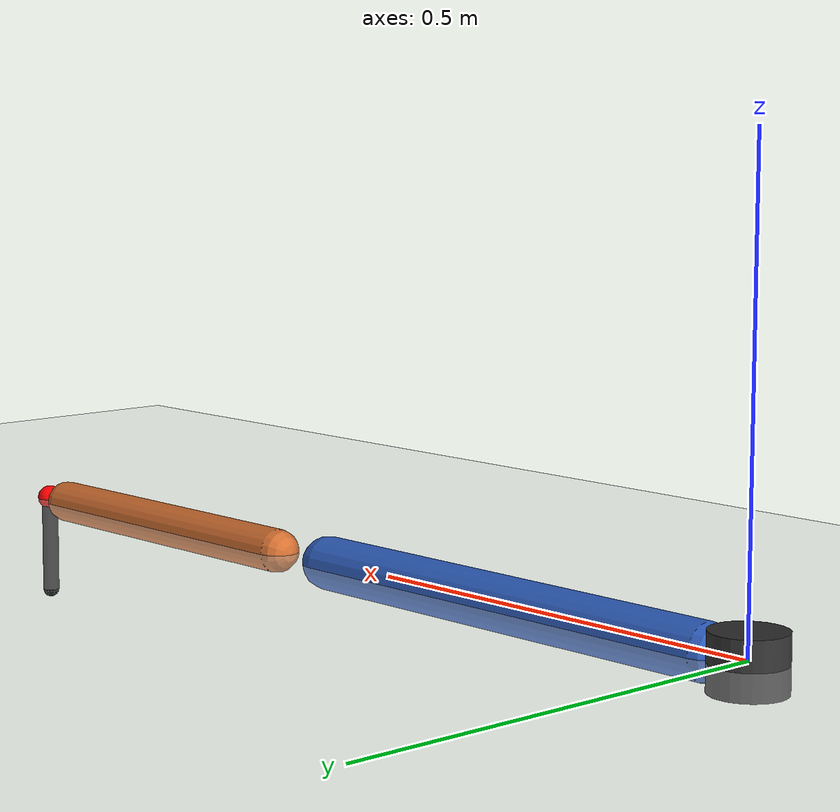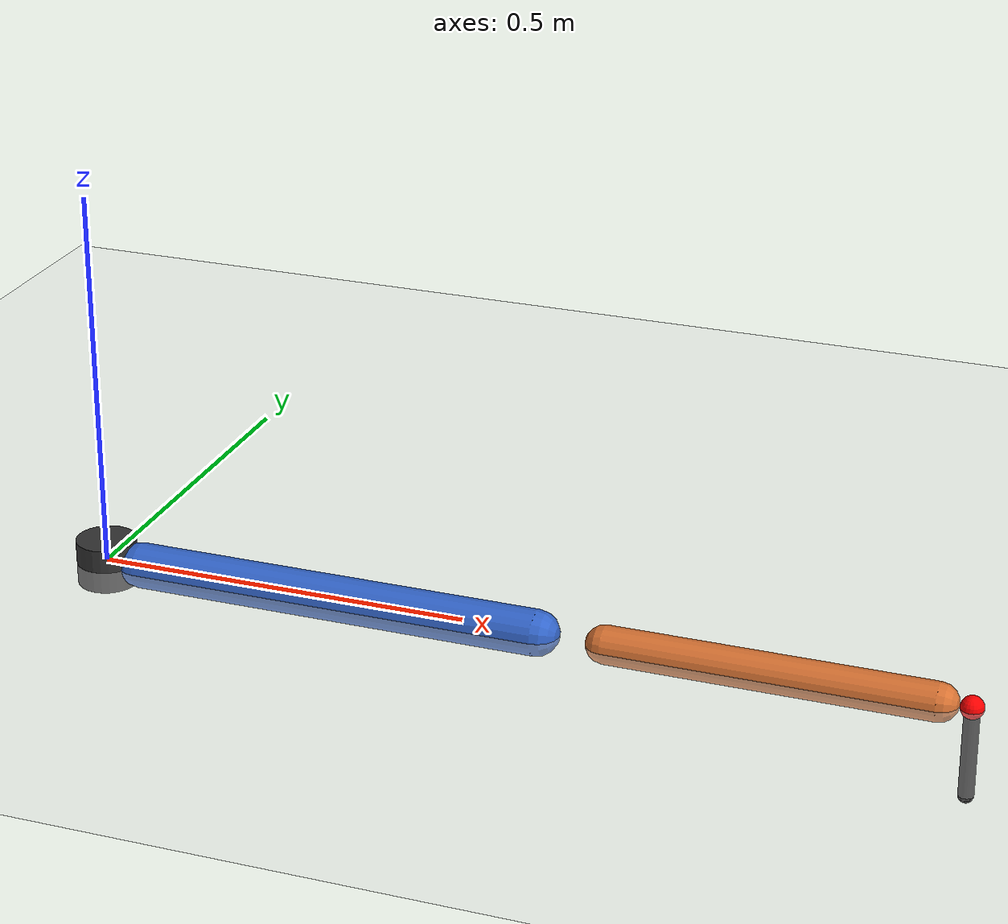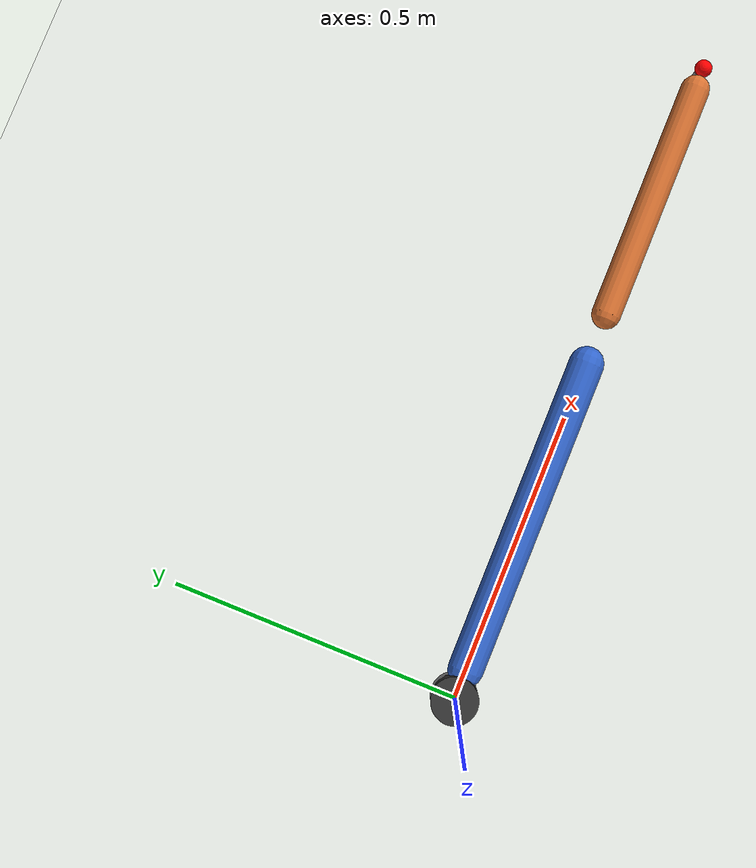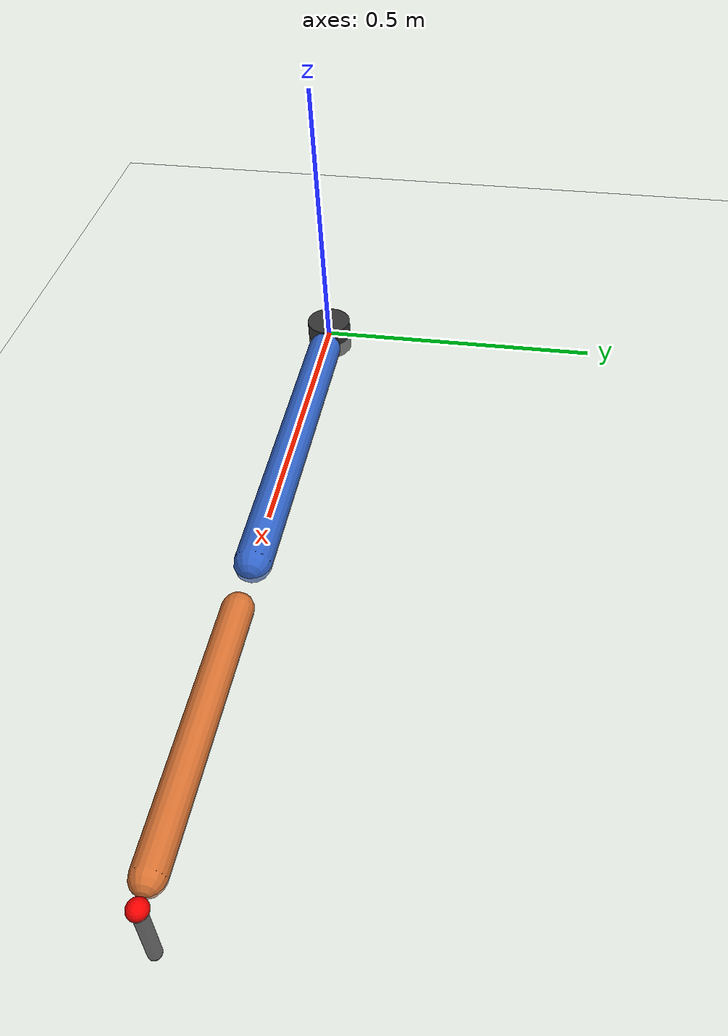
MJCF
<mujoco model="two_link_drawer">
  <compiler angle="radian"/>
  <option timestep="0.01" gravity="0 0 0"/>

  <default>
    <joint damping="2"/>
    <geom rgba="0.7 0.7 0.7 1"/>
  </default>

  <worldbody>
    <geom name="floor" type="plane" size="2 2 0.1" rgba="0.95 0.95 0.95 1"/>

    <body name="base" pos="0 0 0">
      <geom type="cylinder" size="0.04 0.03" rgba="0.2 0.2 0.2 1"/>

      <body name="link1" pos="0 0 0">
        <joint name="joint1" type="hinge" axis="0 0 1" range="-2.2 2.2"/>
        <geom name="geom1" type="capsule"
              fromto="0.05 0 0 0.60 0 0"
              size="0.03"
              rgba="0.2 0.4 0.8 1"
              contype="0" conaffinity="0"/>

        <body name="link2" pos="0.65 0 0">
          <joint name="joint2" type="hinge" axis="0 0 1" range="0.1 2.6"/>
          <geom name="geom2" type="capsule"
                fromto="0.04 0 0 0.46 0 0"
                size="0.025"
                rgba="0.85 0.45 0.2 1"
                contype="0" conaffinity="0"/>

          <site name="ee" pos="0.50 0 0" size="0.015" rgba="1 0 0 1"/>

          <body name="pen" pos="0.50 0 0">
            <geom name="pen_body" type="capsule"
                  fromto="0 0 0 0 0 -0.12"
                  size="0.01"
                  rgba="0.1 0.1 0.1 1"
                  contype="0" conaffinity="0"/>
            <site name="pen_tip" pos="0 0 -0.12" size="0.01" rgba="0 0 0 1"/>
          </body>
        </body>
      </body>
    </body>
  </worldbody>

  <actuator>
    <position name="act1" joint="joint1" kp="180" ctrlrange="-2.2 2.2"/>
    <position name="act2" joint="joint2" kp="180" ctrlrange="0.1 2.6"/>
  </actuator>
</mujoco>
